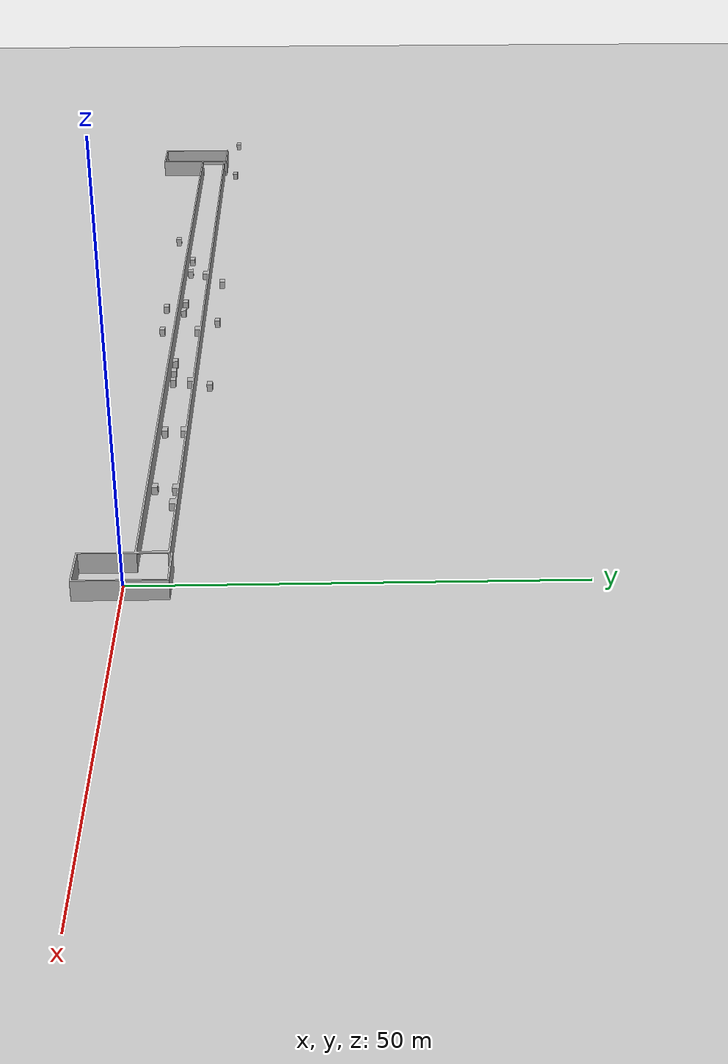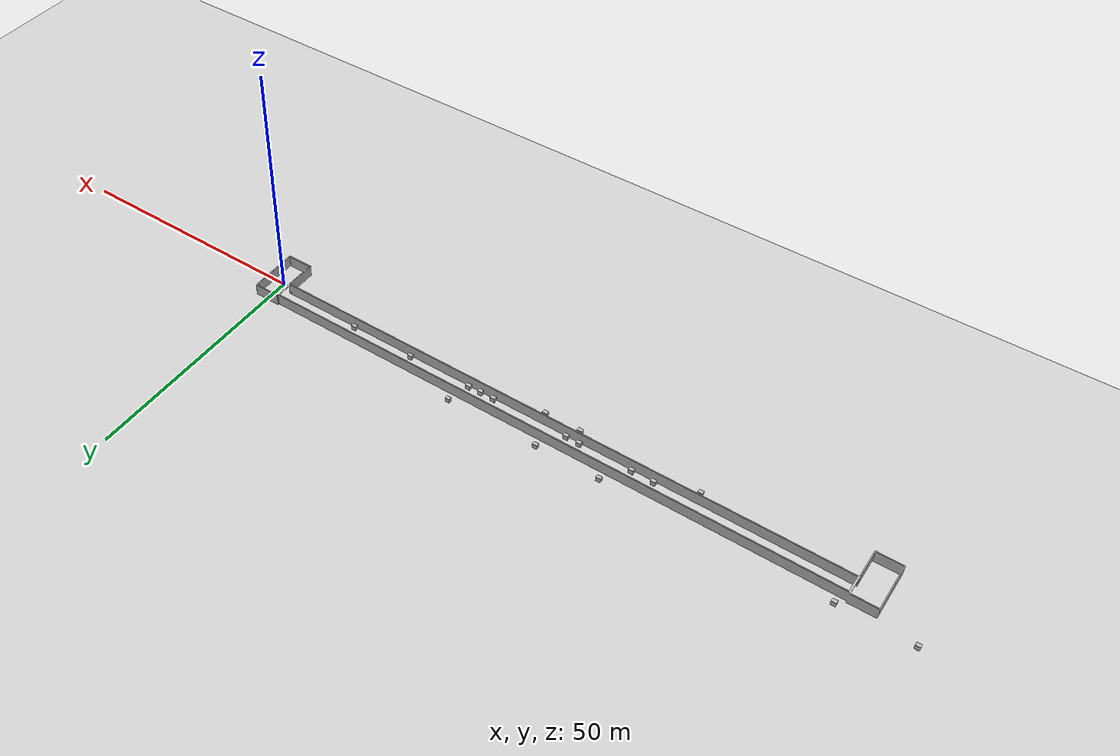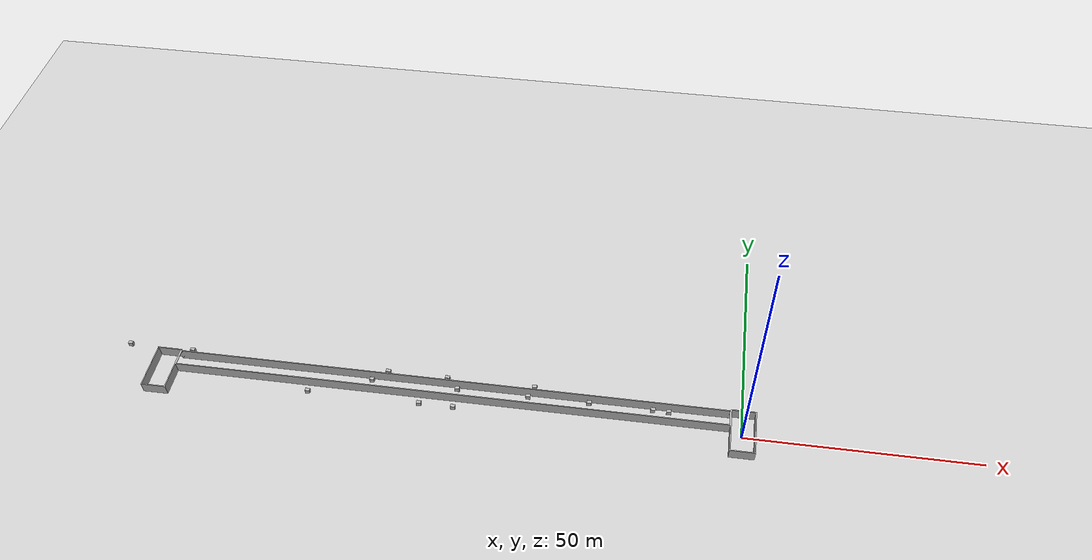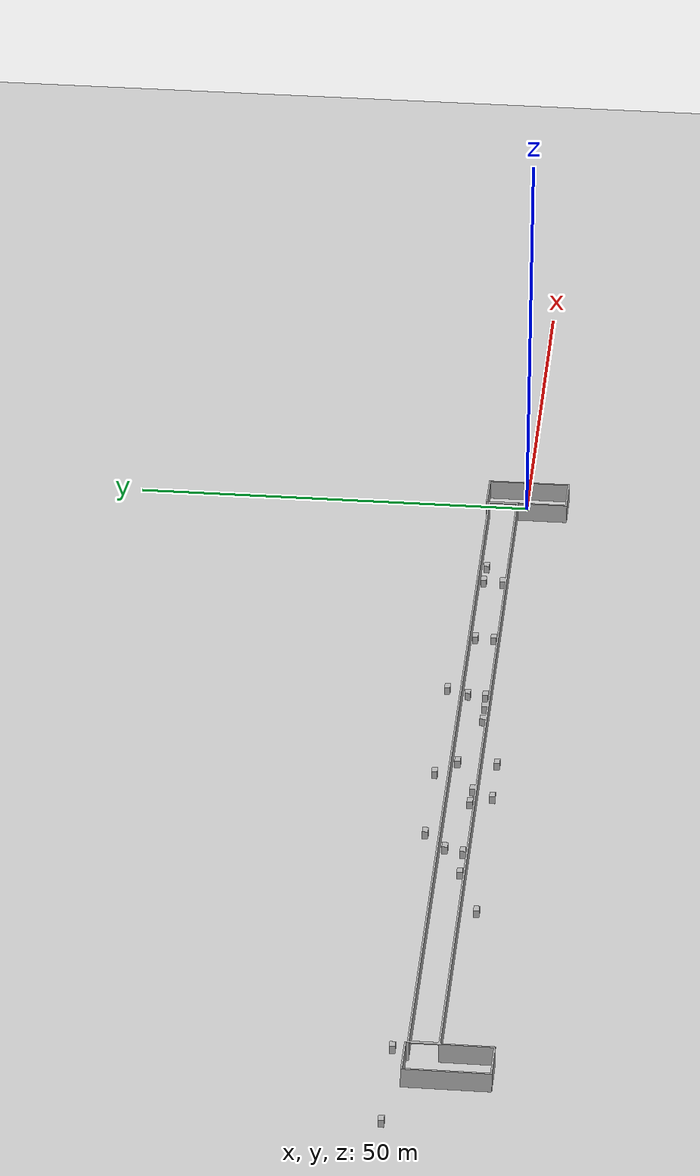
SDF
<?xml version='1.0' encoding='utf-8'?>
<sdf version="1.6">
  <world name="world">
    <gravity>0 0 -9.8</gravity>
    <physics default="0" name="default_physics" type="ode">
      <max_step_size>0.001</max_step_size>
      <real_time_factor>1</real_time_factor>
      <real_time_update_rate>1000</real_time_update_rate>
    </physics>
    <scene>
      <ambient>0.6 0.6 0.6 1</ambient>
      <background>0.4 0.4 0.4 1</background>
      <shadows>false</shadows>
    </scene>
    <include>
      <uri>model://sun</uri>
    </include>
    <include>
      <uri>model://ground_plane</uri>
      <pose>0 0 -0.1 0 -0 0</pose>
    </include>
    <model name="cart_basement_8229">
      <include>
        <uri>model://cart_basement_8229</uri>
        <static>true</static>
        <pose>-0.0 0.0 0.0 0.0 0.0 0.0</pose>
      </include>
    </model>
  </world>
</sdf>

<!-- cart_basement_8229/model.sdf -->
<sdf version="1.6">
  <model name="cart_basement_8229">
    <link name="link">
      <visual name="visual">
	    <geometry>
          <mesh>
            <uri>model://cart_basement_8229/meshes/cart_basement_8229.stl</uri>
          </mesh>
        </geometry>
      </visual>
      <collision name="collision">
        <geometry>
          <mesh>
            <uri>model://cart_basement_8229/meshes/cart_basement_8229.stl</uri>
          </mesh>
        </geometry>
      </collision>
</link>
  <static>1</static>
  </model>
</sdf>
